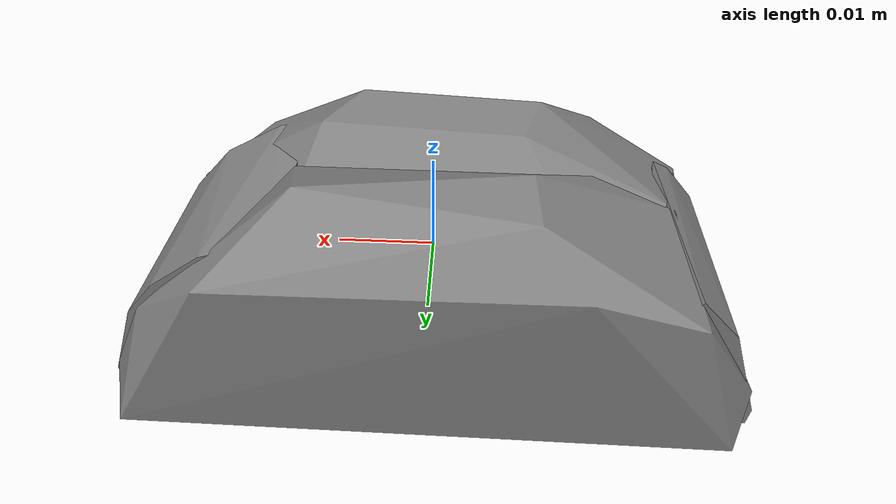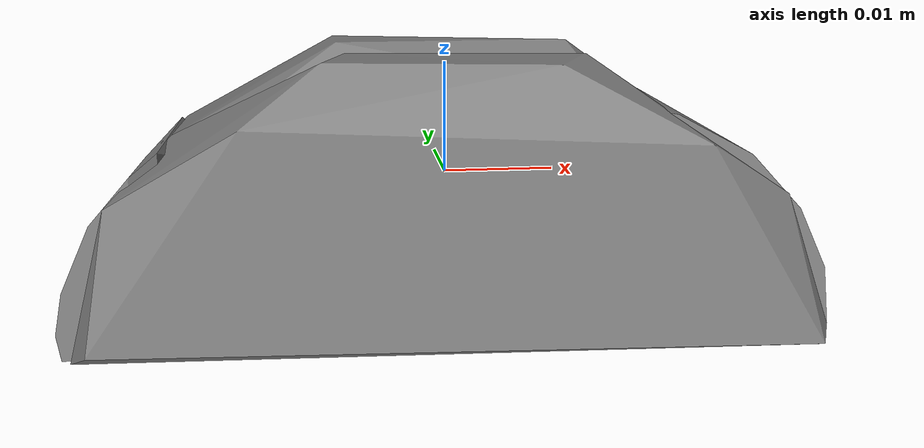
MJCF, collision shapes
<mujoco model="a_lego_duplo">
  <compiler angle="radian" />

  <asset>
    <mesh name="a_lego_duplo_visual_mesh" file="a_lego_duplo/textured.obj" />
    <mesh name="a_lego_duplo_collision_mesh_0" file="a_lego_duplo/textured_coacd_0.stl" />
    <mesh name="a_lego_duplo_collision_mesh_1" file="a_lego_duplo/textured_coacd_1.stl" />
    <mesh name="a_lego_duplo_collision_mesh_2" file="a_lego_duplo/textured_coacd_2.stl" />
    <mesh name="a_lego_duplo_collision_mesh_3" file="a_lego_duplo/textured_coacd_3.stl" />
    <texture name="a_lego_duplo_texture" type="2d" file="a_lego_duplo/texture_map.png" />
    <material name="a_lego_duplo_material" texture="a_lego_duplo_texture" />
  </asset>

  <worldbody>
    <body name="a_lego_duplo" pos="0 0 0" euler="0 0 0">
      <freejoint name="a_lego_duplo_joint" />
      <geom name="a_lego_duplo_visual_geom" type="mesh" mesh="a_lego_duplo_visual_mesh" material="a_lego_duplo_material" pos="0.01643867601045112 0.009535832647545055 -0.01214668664168984" euler="0 0 0" contype="0" conaffinity="0" group="0" />
      <geom name="a_lego_duplo_collision_geom_0" type="mesh" mesh="a_lego_duplo_collision_mesh_0" pos="0.01643867601045112 0.009535832647545055 -0.01214668664168984" euler="0 0 0" contype="1" conaffinity="1" group="3" />
      <geom name="a_lego_duplo_collision_geom_1" type="mesh" mesh="a_lego_duplo_collision_mesh_1" pos="0.01643867601045112 0.009535832647545055 -0.01214668664168984" euler="0 0 0" contype="1" conaffinity="1" group="3" />
      <geom name="a_lego_duplo_collision_geom_2" type="mesh" mesh="a_lego_duplo_collision_mesh_2" pos="0.01643867601045112 0.009535832647545055 -0.01214668664168984" euler="0 0 0" contype="1" conaffinity="1" group="3" />
      <geom name="a_lego_duplo_collision_geom_3" type="mesh" mesh="a_lego_duplo_collision_mesh_3" pos="0.01643867601045112 0.009535832647545055 -0.01214668664168984" euler="0 0 0" contype="1" conaffinity="1" group="3" />
      <inertial pos="0 0 0" euler="0 0 0" mass="0.0372" diaginertia="0.001 0.001 0.001" />
    </body>
  </worldbody>
</mujoco>
